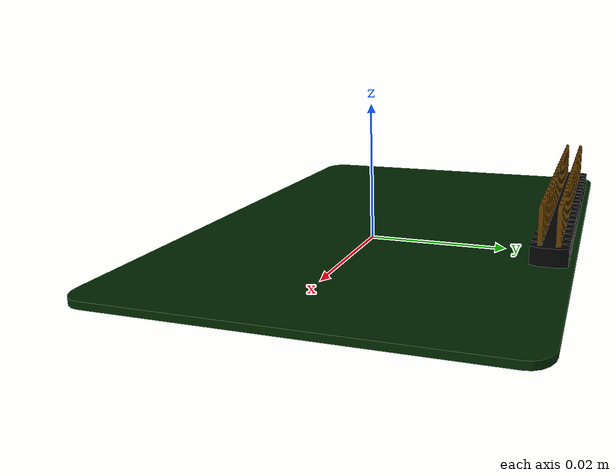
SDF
<?xml version="1.0" ?>
<sdf version="1.6">
  <model name="raspberry">
    <link name="link">
      <pose>0 0 0 0 0 0</pose>
      <inertial>
        <pose>0 0 0 0 0 0</pose>
        <mass>0.05</mass>
        <inertia>
          <ixx>1e-05</ixx>
          <ixy>0</ixy>
          <ixz>0</ixz>
          <iyy>1e-05</iyy>
          <iyz>0</iyz>
          <izz>1e-05</izz>
        </inertia>
      </inertial>
      <visual name="raspberry_visual">
        <pose>0 0 0 0 0 0</pose>
        <geometry>
          <mesh>
            <scale>1 1 1</scale>
            <uri>file://tarot_680/components/raspberry/meshes/raspberry.dae</uri>
          </mesh>
        </geometry>
      </visual>
    </link>
  </model>
</sdf>
